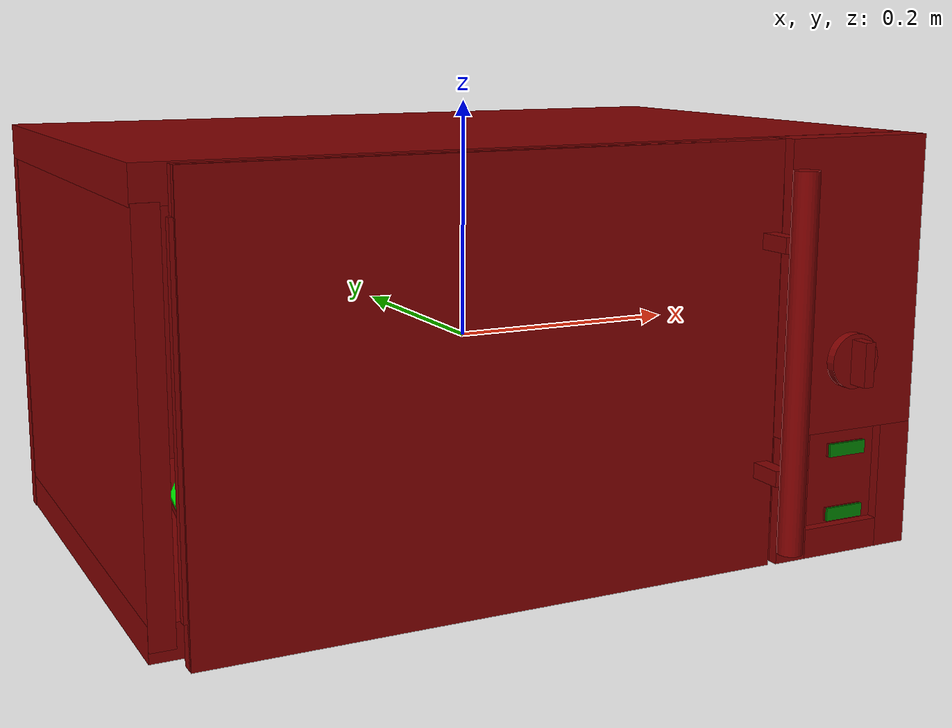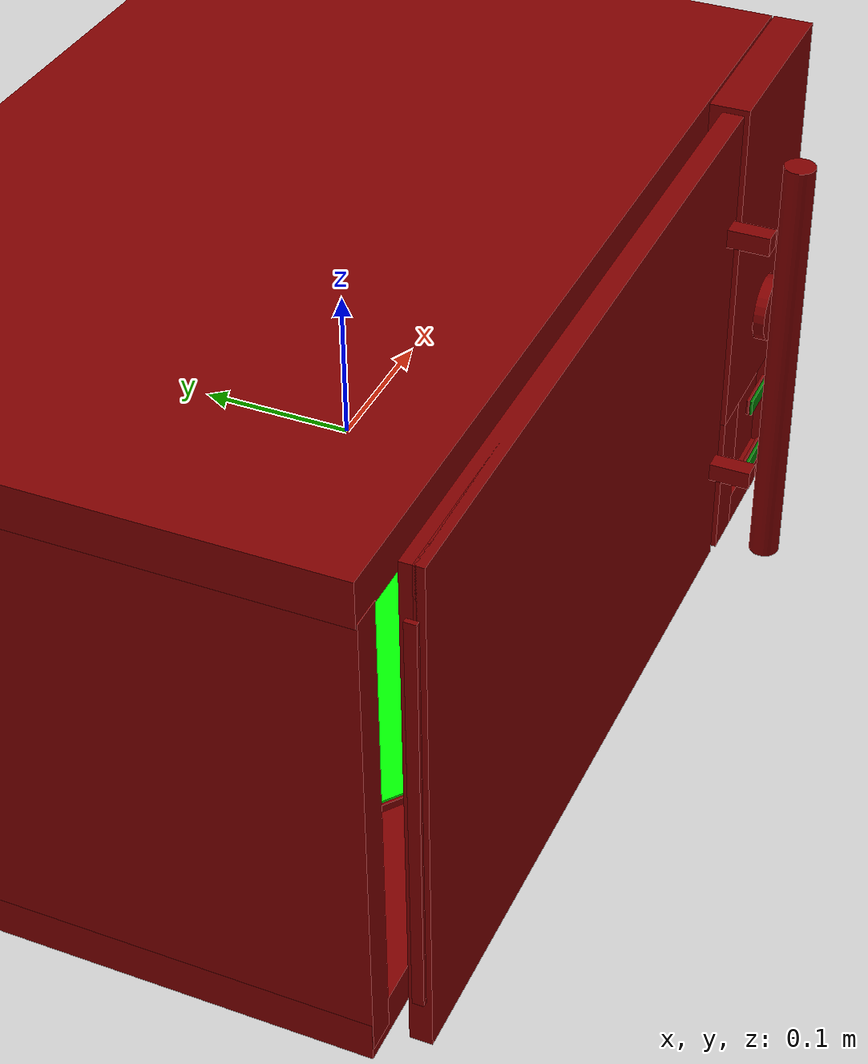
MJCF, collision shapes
<?xml version='1.0' encoding='UTF-8'?>
<mujoco model="model">
  <option timestep="0.002" gravity="0.0 0.0 -9.81"/>
  <compiler angle="radian"/>
  <asset>
    <mesh file="visuals/door.obj" name="door_vis"/>
    <mesh file="visuals/door_Clear.obj" name="door_Clear_vis"/>
    <mesh file="visuals/Body001.obj" name="Body001_vis"/>
    <mesh file="visuals/Button001.obj" name="Button001_vis"/>
    <mesh file="visuals/Button002.obj" name="Button002_vis"/>
    <mesh file="visuals/Disc001.obj" name="Disc001_vis"/>
    <mesh file="visuals/Knob001.obj" name="Knob001_vis"/>
    <texture file="visuals/T_BC001.png" name="Body001_material" type="2d"/>
    <material name="Body001_material" rgba="1 1 1 1.0" texture="Body001_material" shininess="1" specular="1"/>
    <texture file="visuals/T_BC001.png" name="door_material" type="2d"/>
    <material name="door_material" rgba="1 1 1 1.0" texture="door_material" shininess="1" specular="1"/>
    <texture file="visuals/T_BC001.png" name="door_Clear_material" type="2d"/>
    <material name="door_Clear_material" rgba="1 1 1 0.75" texture="door_Clear_material" shininess="0.5" specular="0.3"/>
    <texture file="visuals/T_BC001.png" name="Button001_material" type="2d"/>
    <material name="Button001_material" rgba="1 1 1 1.0" texture="Button001_material" shininess="1" specular="1"/>
    <texture file="visuals/T_BC001.png" name="Button002_material" type="2d"/>
    <material name="Button002_material" rgba="1 1 1 1.0" texture="Button002_material" shininess="1" specular="1"/>
    <texture file="visuals/T_BC001.png" name="Disc001_material" type="2d"/>
    <material name="Disc001_material" rgba="1 1 1 1.0" texture="Disc001_material" shininess="0.5" specular="0.5"/>
    <texture file="visuals/T_BC001.png" name="Knob001_material" type="2d"/>
    <material name="Knob001_material" rgba="1 1 1 1.0" texture="Knob001_material" shininess="1" specular="1"/>
  </asset>
  <default>
    <default class="visual">
      <geom conaffinity="0" contype="0" group="1" type="mesh"/>
    </default>
    <default class="collision">
      <geom group="0" rgba="0.5 0 0 0.5"/>
    </default>
    <default class="spawn">
      <geom group="0" rgba="1 1 1 0.5" contype="0" conaffinity="0"/>
      <site group="0" rgba="1 1 1 0.5"/>
    </default>
    <default class="region">
      <geom group="1" conaffinity="0" contype="0" rgba="0 1 0 0"/>
    </default>
  </default>
  <worldbody>
    <body>
      <body name="object">
        <geom class="collision" type="cylinder" pos="-0.0748702883720398 0.03600567579269409 -0.13489985466003418" size="0.17178954184055328 0.0008063041022978723" quat="1.0 0.0 0.0 0.0" name="tray" rgba="0 1 0 0.5"/>
        <geom class="collision" type="box" pos="0.2570140063762665 -0.19964851438999176 -0.13752494752407074" size="0.018102804198861122 0.0008529985207132995 0.005535766948014498" quat="1.0 0.0 0.0 0.0" name="start_button" rgba="0.0 0.5 0 0.5"/>
        <geom class="collision" type="box" pos="0.2570140063762665 -0.19964851438999176 -0.08242230117321014" size="0.018102804198861122 0.0008529983460903168 0.005535766948014498" quat="1.0 0.0 0.0 0.0" name="stop_button" rgba="0.0 0.5 0 0.5"/>
        <geom mesh="Body001_vis" type="mesh" solimp="0.998 0.998 0.001" solref="0.001 1" friction="0.95 0.3 0.1" class="visual" material="Body001_material"/>
        <geom class="collision" type="box" pos="-0.00016293494263663888 0.0386246033012867 0.16017907857894897" size="0.32676026225090027 0.20521831512451172 0.01475370954722166" quat="1.0 0.0 0.0 0.0"/>
        <geom class="collision" type="box" pos="-0.00030748944845981896 0.038624562323093414 -0.16079194843769073" size="0.3259720504283905 0.20521825551986694 0.014110074378550053" quat="1.0 0.0 0.0 0.0"/>
        <geom class="collision" type="box" pos="-0.3161245584487915 0.03900117054581642 -0.009116819128394127" size="0.010146103799343109 0.20622709393501282 0.15733598172664642" quat="1.0 0.0 0.0 0.0"/>
        <geom class="collision" type="box" pos="0.24198691546916962 0.03842874616384506 -0.009116818197071552" size="0.08474898338317871 0.20541329681873322 0.15733616054058075" quat="1.0 0.0 0.0 0.0"/>
        <geom class="collision" type="box" pos="-0.00022453791461884975 0.23693059384822845 -0.00021847523748874664" size="0.3266970217227936 0.006912285927683115 0.17488478124141693" quat="1.0 0.0 0.0 0.0"/>
        <geom class="collision" type="box" pos="0.2595246136188507 -0.18159101903438568 0.05348791182041168" size="0.06720907986164093 0.013442549854516983 0.12142477929592133" quat="1.0 0.0 0.0 0.0"/>
        <geom class="collision" type="box" pos="0.2596195936203003 -0.17715835571289062 -0.12140179425477982" size="0.06730376183986664 0.009009863249957561 0.05346515029668808" quat="1.0 0.0 0.0 0.0"/>
        <geom class="collision" type="box" pos="0.31130266189575195 -0.19060537219047546 -0.12140191346406937" size="0.015620670281350613 0.004428177606314421 0.053464990109205246" quat="1.0 0.0 0.0 0.0"/>
        <geom class="collision" type="box" pos="0.20696860551834106 -0.19059166312217712 -0.12140168249607086" size="0.014652776531875134 0.004441662225872278 0.05346501246094704" quat="1.0 0.0 0.0 0.0"/>
        <geom class="collision" type="box" pos="0.25865164399147034 -0.19059975445270538 -0.1623072773218155" size="0.0370304174721241 0.004433778114616871 0.0125596197322011" quat="1.0 0.0 0.0 0.0"/>
        <body name="door">
          <joint axis="0.0 0.0 1.0" pos="-0.3103099465370178 -0.18405452370643616 -9.821634739637375e-05" limited="true" name="microjoint" range="-1.5707963267948966 0.0" type="hinge" damping="1" frictionloss="1" armature=".01" stiffness="0.05"/>
          <geom mesh="door_vis" type="mesh" solimp="0.998 0.998 0.001" solref="0.001 1" friction="0.95 0.3 0.1" class="visual" material="door_material"/>
          <geom class="collision" type="box" pos="-0.059202488511800766 -0.186150923371315 3.386009484529495e-05" size="0.24441814422607422 0.007231732364743948 0.17490069568157196" quat="1.0 0.0 0.0 0.0"/>
          <geom class="collision" type="box" pos="0.17370536923408508 -0.20389440655708313 0.09579389542341232" size="0.006420867517590523 0.01820179633796215 0.006403615232557058" quat="1.0 0.0 0.0 0.0"/>
          <geom class="collision" type="box" pos="0.17370536923408508 -0.20389440655708313 -0.0911797508597374" size="0.006420867517590523 0.01820179633796215 0.006453994195908308" quat="1.0 0.0 0.0 0.0"/>
          <geom class="collision" type="cylinder" pos="0.1737346202135086 -0.23522968590259552 0.0028021996840834618" size="0.010333633981645107 0.15185929834842682" quat="1.0 0.0 0.0 0.0" name="door_handle_main"/>
          <geom class="collision" type="box" pos="-0.059202488511800766 -0.186150923371315 3.386009484529495e-05" size="0.2476932853460312 0.0036931107752025127 0.14038217067718506" quat="1.0 0.0 0.0 0.0"/>
          <geom class="collision" type="box" pos="-0.059202488511800766 -0.18910345435142517 3.386009484529495e-05" size="0.24441814422607422 0.0026239571161568165 0.17490069568157196" quat="1.0 0.0 0.0 0.0" name="door_main"/>
          <body name="door_Clear">
            <geom mesh="door_Clear_vis" type="mesh" solimp="0.998 0.998 0.001" solref="0.001 1" friction="0.95 0.3 0.1" class="visual" material="door_Clear_material"/>
            <geom class="collision" type="box" pos="-0.059202488511800766 -0.186150923371315 3.386009484529495e-05" size="0.2476932853460312 0.0036931107752025127 0.14038217067718506" quat="1.0 0.0 0.0 0.0"/>
          </body>
        </body>
        <body name="Button001">
          <joint axis="0.0 1.0 0.0" pos="0.2570140063762665 -0.19760066270828247 -0.08242230862379074" limited="true" name="Button001_joint" range="0.0 0.003" type="slide" damping="1" frictionloss="1" armature=".01" stiffness="0.05"/>
          <geom mesh="Button001_vis" type="mesh" solimp="0.998 0.998 0.001" solref="0.001 1" friction="0.95 0.3 0.1" class="visual" material="Button001_material"/>
          <geom class="collision" type="box" pos="0.2570140063762665 -0.19683273136615753 -0.08242230117321014" size="0.018102804198861122 0.0008728747488930821 0.005535772070288658" quat="1.0 0.0 0.0 0.0"/>
        </body>
        <body name="Button002">
          <joint axis="0.0 1.0 0.0" pos="0.2570140063762665 -0.19760066270828247 -0.13752494752407074" limited="true" name="Button002_joint" range="0.0 0.003" type="slide" damping="1" frictionloss="1" armature=".01" stiffness="0.05"/>
          <geom mesh="Button002_vis" type="mesh" solimp="0.998 0.998 0.001" solref="0.001 1" friction="0.95 0.3 0.1" class="visual" material="Button002_material"/>
          <geom class="collision" type="box" pos="0.2570140063762665 -0.19683273136615753 -0.13752494752407074" size="0.018102804198861122 0.0008728749235160649 0.005535772070288658" quat="1.0 0.0 0.0 0.0"/>
        </body>
        <body name="Disc001">
          <joint axis="0.0 0.0 1.0" pos="-0.07487017661333084 0.03600551187992096 -0.1442800909280777" limited="false" name="Disc001_joint" range="0 360" type="hinge" damping="1" frictionloss="1" armature=".01" stiffness="0.05"/>
          <geom mesh="Disc001_vis" type="mesh" solimp="0.998 0.998 0.001" solref="0.001 1" friction="0.95 0.3 0.1" class="visual" material="Disc001_material"/>
          <geom class="collision" type="cylinder" pos="-0.0748702883720398 0.03600567579269409 -0.14049065113067627" size="0.17178954184055328 0.0027493364177644253" quat="1.0 0.0 0.0 0.0"/>
        </body>
        <body name="Knob001">
          <joint axis="0.0 1.0 0.0" pos="0.2570140063762665 -0.20813234150409698 -0.007349255494773388" limited="true" name="Knob001_joint" range="0.0 5.235987755982989" type="hinge" damping="0.05" armature="0.5" frictionloss="0.75"/>
          <geom mesh="Knob001_vis" type="mesh" solimp="0.998 0.998 0.001" solref="0.001 1" friction="0.95 0.3 0.1" class="visual" material="Knob001_material"/>
          <geom class="collision" type="cylinder" pos="0.2570140063762665 -0.20078666508197784 -0.007349255494773388" size="0.02304663322865963 0.004026531707495451" quat="0.7071068286895752 0.7071067690849304 0.0 0.0" friction="100 0.5 0.01"/>
          <geom class="collision" type="box" pos="0.2570140063762665 -0.21293427050113678 -0.007349255494773388" size="0.0047026523388922215 0.008965497836470604 0.01865711621940136" quat="1.0 0.0 0.0 0.0" friction="100 0.5 0.01"/>
        </body>
        <geom class="region" name="reg_int" type="box" pos="-0.0749911516904831 0.03155732899904251 0.0028175488114356995" size="0.22615828907489777 0.1925648952126503 0.137911042034626"/>
        <geom class="region" name="reg_main" type="box" pos="0.0 0.022718816995620728 0.0" size="0.3279231915473938 0.22352124547958374 0.17613464391231537"/>
      <geom class="region" name="reg_tray" type="cylinder" pos="-0.0748702883720398 0.03600567579269409 0.0033175201441627" size="0.17178954184055328 0.136411070701899"/></body>
    </body>
  </worldbody>
  <actuator>
    <motor name="microjoint_actuator" joint="microjoint" gear="10"/>
    <motor name="Button001_joint_actuator" joint="Button001_joint" gear="0.5"/>
    <motor name="Button002_joint_actuator" joint="Button002_joint" gear="0.5"/>
    <motor name="Disc001_joint_actuator" joint="Disc001_joint" gear="0.5"/>
    <motor name="Knob001_joint_actuator" joint="Knob001_joint" gear="0.5"/>
  </actuator>
</mujoco>
